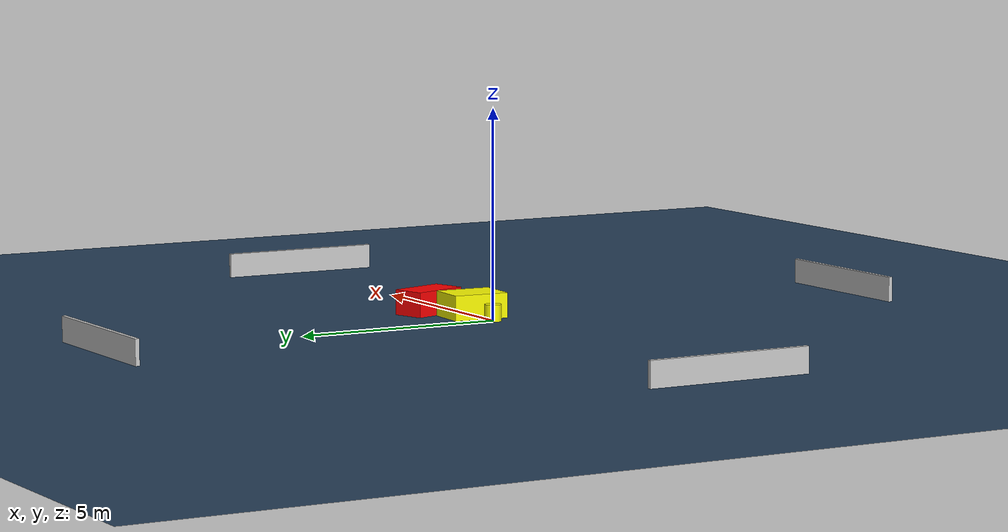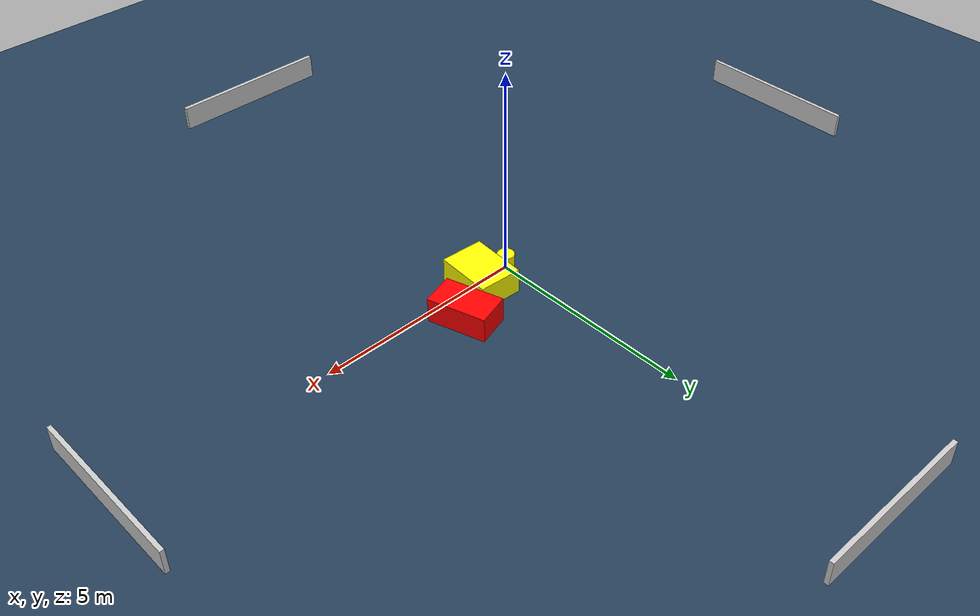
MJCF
<?xml version="1.0" ?>
<mujoco model="generated_environment">
  <option timestep="0.01" integrator="RK4" cone="elliptic"/>
  <default>
    <geom density="1"/>
  </default>
  <asset>
    <texture builtin="gradient" height="3072" name="skybox" rgb1="0.3 0.5 0.7" rgb2="0 0 0" type="skybox" width="512"/>
    <texture builtin="checker" height="300" name="groundplane" rgb1="0.2 0.3 0.4" rgb2="0.1 0.2 0.3" type="2d" width="300"/>
    <material name="groundplane" reflectance="0.2" texrepeat="5 5" texture="groundplane"/>
  </asset>
  <worldbody>
    <light dir="0 0 -1" directional="true" pos="0 0 1.5"/>
    <geom condim="3" friction="0.5 0.005 0.001" material="groundplane" name="floor" pos="0 0 0" size="0 0 0.05" type="plane"/>
    <body name="walls">
      <geom name="wall_1" condim="4" pos="-10.0 0.0 0.3" rgba="0.800000011920929 0.800000011920929 0.800000011920929 1.0" size="0.05 2.0 0.3" type="box"/>
      <geom name="wall_2" condim="4" pos="10.0 0.0 0.3" rgba="0.800000011920929 0.800000011920929 0.800000011920929 1.0" size="0.05 2.0 0.3" type="box"/>
      <geom name="wall_3" condim="4" pos="0.0 -10.0 0.3" rgba="0.800000011920929 0.800000011920929 0.800000011920929 1.0" size="2.0 0.05 0.3" type="box"/>
      <geom name="wall_4" condim="4" pos="0.0 10.0 0.3" rgba="0.800000011920929 0.800000011920929 0.800000011920929 1.0" size="2.0 0.05 0.3" type="box"/>
    </body>
    <body name="robot">
      <joint name="joint_x" type="slide" pos="0 0 0" axis="1 0 0"/>
      <joint name="joint_y" type="slide" pos="0 0 0" axis="0 1 0"/>
      <geom name="robot" type="cylinder" pos="0.0 0.0 0.2" size="0.2 0.2 0.0" mass="5.0" friction="1.0 0.005 0.0001" condim="4" rgba="1.0 1.0 0.0 1.0"/>
    </body>
    <body name="obstacle_1_movable">
      <geom name="obstacle_1_movable" condim="4" pos="0.8410891375475342 0.08802251307894023 0.3" euler="0 0 176.6783435792885" friction="0.0 0.005 0.001" rgba="1.0 1.0 0.0 1.0" size="0.5141097464688316 0.6774847568288427 0.3" type="box" mass="0.1"/>
      <joint type="free"/>
    </body>
    <body name="obstacle_2_static">
      <geom name="obstacle_2_static" condim="4" pos="1.8666407794907482 0.7033141098728933 0.3" euler="0 0 197.04798032624183" friction="0.0 0.005 0.001" rgba="1.0 0.0 0.0 1.0" size="0.4049311468850163 0.6984581285055627 0.3" type="box"/>
    </body>
  </worldbody>
  <actuator>
    <motor name="actuator_x" joint="joint_x" gear="1" ctrlrange="-1 1"/>
    <motor name="actuator_y" joint="joint_y" gear="1" ctrlrange="-1 1"/>
  </actuator>
</mujoco>
